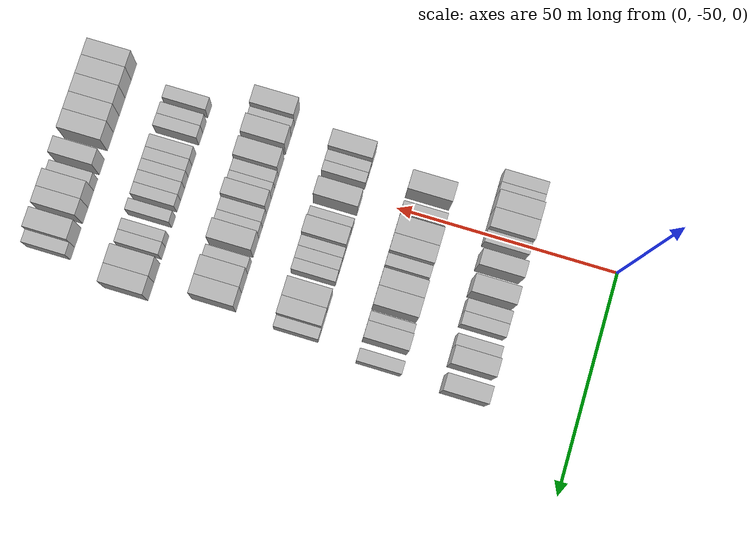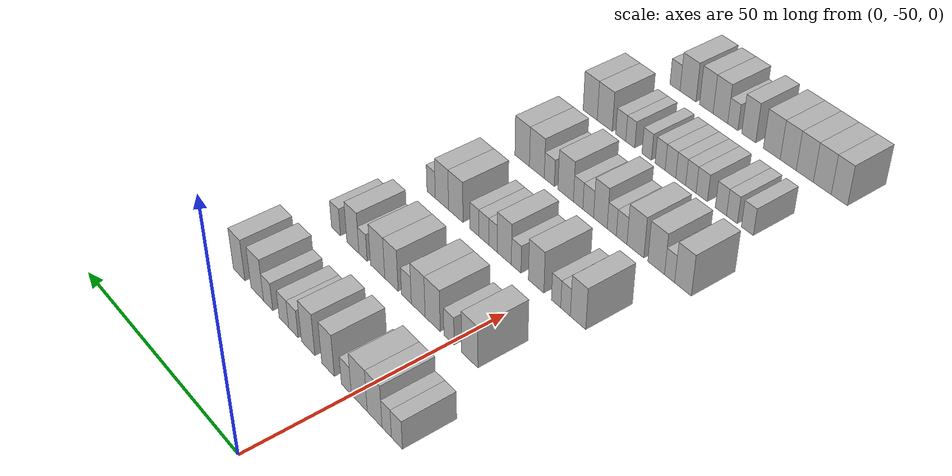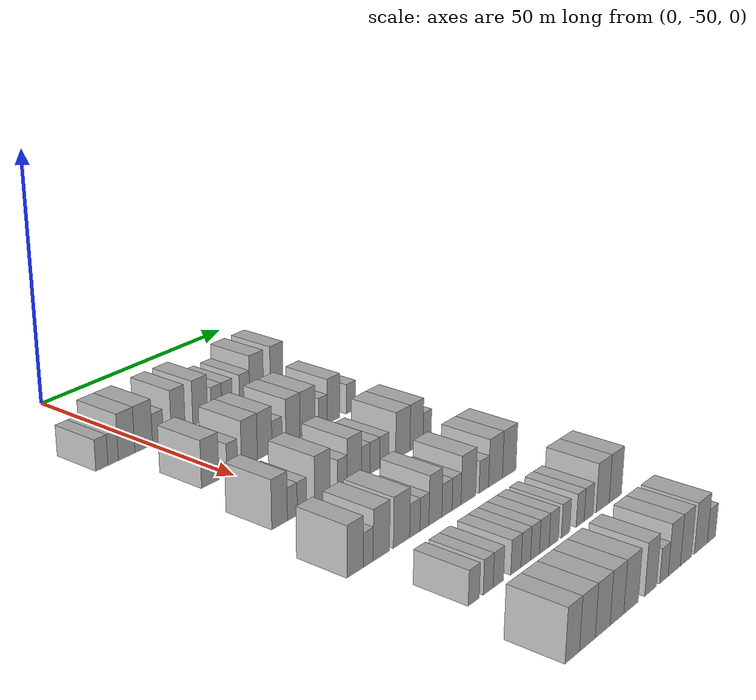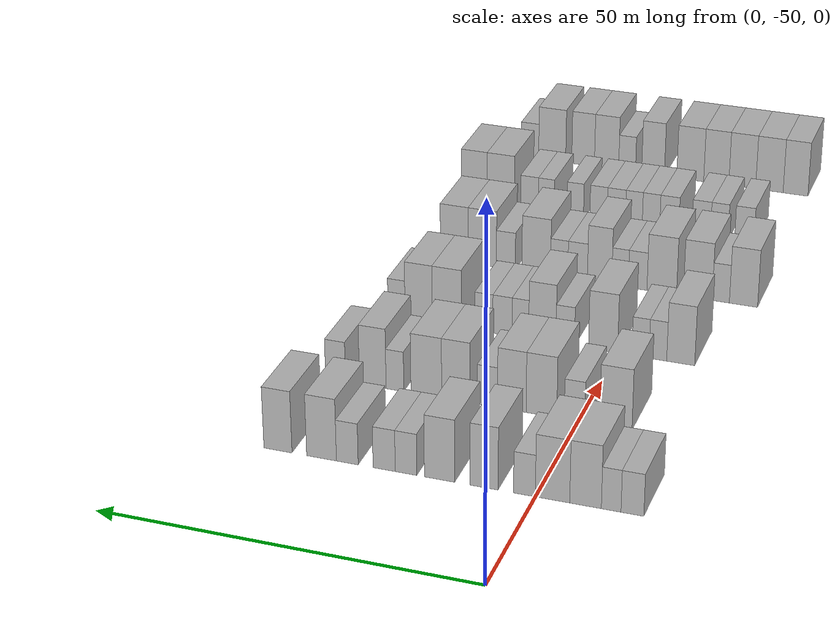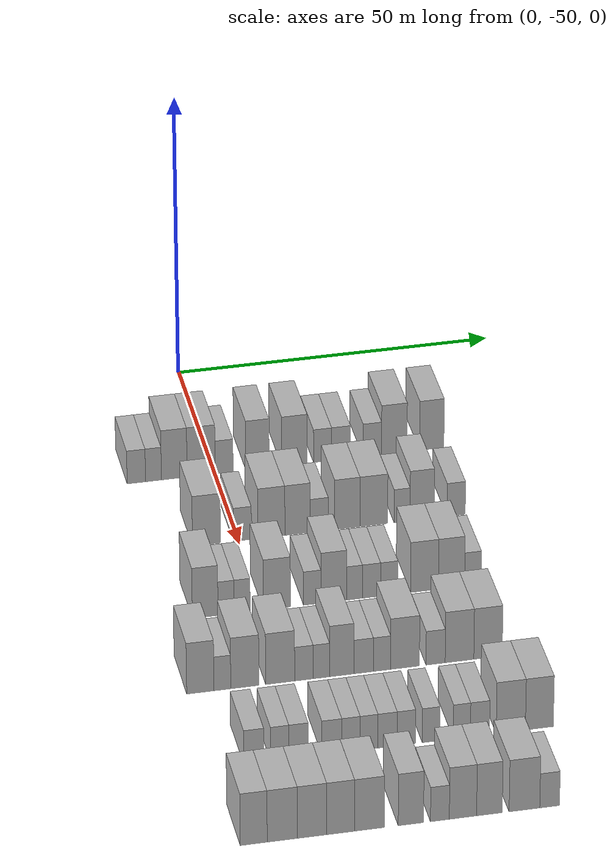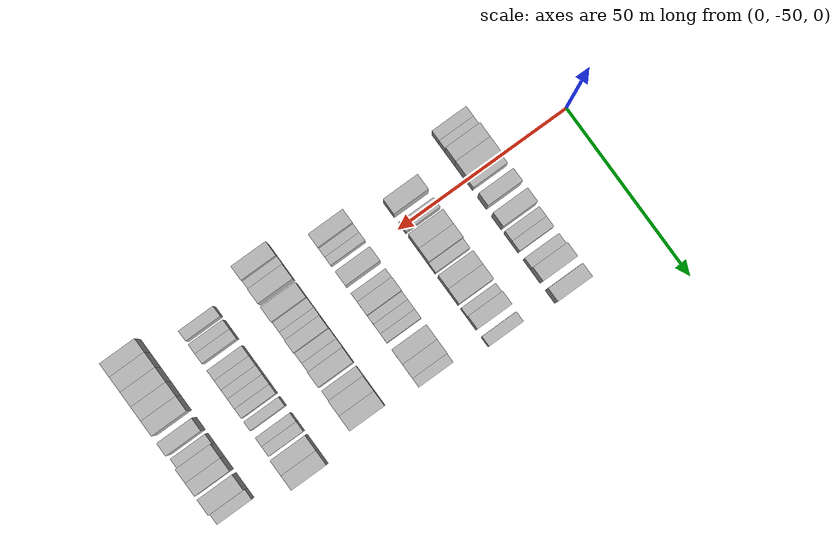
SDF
<sdf version="1.6">
 <world name="default">
  <model name="building_72">
   <static>1</static>
   <pose>25.0000 -62.3027 0 0.000000 0.000000 0.000000</pose>
   <link name="link">
    <pose>0 0 3.00 0 0 0</pose>
    <collision name="collision"><geometry><box><size>10.0000 2.8853 6.0000</size></box></geometry></collision>
    <visual name="visual">
     <cast_shadows>0</cast_shadows>
     <geometry><box><size>10.0000 2.8853 6.0000</size></box></geometry>
     <material>
      <script>
       <uri>model://HANNAS_wall/materials/scripts</uri>
       <uri>model://HANNAS_wall/materials/textures</uri>
       <name>vrc/HANNAS_wall</name>
      </script>
     </material>
    </visual>
   </link>
  </model>
  <model name="building_73">
   <static>1</static>
   <pose>25.0000 -59.6160 0 0.000000 0.000000 0.000000</pose>
   <link name="link">
    <pose>0 0 3.00 0 0 0</pose>
    <collision name="collision"><geometry><box><size>10.0000 2.4881 6.0000</size></box></geometry></collision>
    <visual name="visual">
     <cast_shadows>0</cast_shadows>
     <geometry><box><size>10.0000 2.4881 6.0000</size></box></geometry>
     <material>
      <script>
       <uri>model://HANNAS_wall/materials/scripts</uri>
       <uri>model://HANNAS_wall/materials/textures</uri>
       <name>vrc/HANNAS_wall</name>
      </script>
     </material>
    </visual>
   </link>
  </model>
  <model name="building_74">
   <static>1</static>
   <pose>25.0000 -56.3568 0 0.000000 0.000000 0.000000</pose>
   <link name="link">
    <pose>0 0 4.50 0 0 0</pose>
    <collision name="collision"><geometry><box><size>10.0000 4.0303 9.0000</size></box></geometry></collision>
    <visual name="visual">
     <cast_shadows>0</cast_shadows>
     <geometry><box><size>10.0000 4.0303 9.0000</size></box></geometry>
     <material>
      <script>
       <uri>model://HANNAS_wall/materials/scripts</uri>
       <uri>model://HANNAS_wall/materials/textures</uri>
       <name>vrc/HANNAS_wall</name>
      </script>
     </material>
    </visual>
   </link>
  </model>
  <model name="building_75">
   <static>1</static>
   <pose>25.0000 -52.1348 0 0.000000 0.000000 0.000000</pose>
   <link name="link">
    <pose>0 0 4.50 0 0 0</pose>
    <collision name="collision"><geometry><box><size>10.0000 4.4137 9.0000</size></box></geometry></collision>
    <visual name="visual">
     <cast_shadows>0</cast_shadows>
     <geometry><box><size>10.0000 4.4137 9.0000</size></box></geometry>
     <material>
      <script>
       <uri>model://HANNAS_wall/materials/scripts</uri>
       <uri>model://HANNAS_wall/materials/textures</uri>
       <name>vrc/HANNAS_wall</name>
      </script>
     </material>
    </visual>
   </link>
  </model>
  <model name="building_76">
   <static>1</static>
   <pose>25.0000 -48.5187 0 0.000000 0.000000 0.000000</pose>
   <link name="link">
    <pose>0 0 3.00 0 0 0</pose>
    <collision name="collision"><geometry><box><size>10.0000 2.8185 6.0000</size></box></geometry></collision>
    <visual name="visual">
     <cast_shadows>0</cast_shadows>
     <geometry><box><size>10.0000 2.8185 6.0000</size></box></geometry>
     <material>
      <script>
       <uri>model://HANNAS_wall/materials/scripts</uri>
       <uri>model://HANNAS_wall/materials/textures</uri>
       <name>vrc/HANNAS_wall</name>
      </script>
     </material>
    </visual>
   </link>
  </model>
  <model name="building_77">
   <static>1</static>
   <pose>25.0000 -43.2736 0 0.000000 0.000000 0.000000</pose>
   <link name="link">
    <pose>0 0 4.50 0 0 0</pose>
    <collision name="collision"><geometry><box><size>10.0000 3.6717 9.0000</size></box></geometry></collision>
    <visual name="visual">
     <cast_shadows>0</cast_shadows>
     <geometry><box><size>10.0000 3.6717 9.0000</size></box></geometry>
     <material>
      <script>
       <uri>model://HANNAS_wall/materials/scripts</uri>
       <uri>model://HANNAS_wall/materials/textures</uri>
       <name>vrc/HANNAS_wall</name>
      </script>
     </material>
    </visual>
   </link>
  </model>
  <model name="building_78">
   <static>1</static>
   <pose>25.0000 -37.4311 0 0.000000 0.000000 0.000000</pose>
   <link name="link">
    <pose>0 0 4.50 0 0 0</pose>
    <collision name="collision"><geometry><box><size>10.0000 4.0133 9.0000</size></box></geometry></collision>
    <visual name="visual">
     <cast_shadows>0</cast_shadows>
     <geometry><box><size>10.0000 4.0133 9.0000</size></box></geometry>
     <material>
      <script>
       <uri>model://HANNAS_wall/materials/scripts</uri>
       <uri>model://HANNAS_wall/materials/textures</uri>
       <name>vrc/HANNAS_wall</name>
      </script>
     </material>
    </visual>
   </link>
  </model>
  <model name="building_79">
   <static>1</static>
   <pose>25.0000 -32.9863 0 0.000000 0.000000 0.000000</pose>
   <link name="link">
    <pose>0 0 3.00 0 0 0</pose>
    <collision name="collision"><geometry><box><size>10.0000 2.8762 6.0000</size></box></geometry></collision>
    <visual name="visual">
     <cast_shadows>0</cast_shadows>
     <geometry><box><size>10.0000 2.8762 6.0000</size></box></geometry>
     <material>
      <script>
       <uri>model://HANNAS_wall/materials/scripts</uri>
       <uri>model://HANNAS_wall/materials/textures</uri>
       <name>vrc/HANNAS_wall</name>
      </script>
     </material>
    </visual>
   </link>
  </model>
  <model name="building_80">
   <static>1</static>
   <pose>25.0000 -30.0642 0 0.000000 0.000000 0.000000</pose>
   <link name="link">
    <pose>0 0 3.00 0 0 0</pose>
    <collision name="collision"><geometry><box><size>10.0000 2.9680 6.0000</size></box></geometry></collision>
    <visual name="visual">
     <cast_shadows>0</cast_shadows>
     <geometry><box><size>10.0000 2.9680 6.0000</size></box></geometry>
     <material>
      <script>
       <uri>model://HANNAS_wall/materials/scripts</uri>
       <uri>model://HANNAS_wall/materials/textures</uri>
       <name>vrc/HANNAS_wall</name>
      </script>
     </material>
    </visual>
   </link>
  </model>
  <model name="building_81">
   <static>1</static>
   <pose>25.0000 -25.1114 0 0.000000 0.000000 0.000000</pose>
   <link name="link">
    <pose>0 0 3.00 0 0 0</pose>
    <collision name="collision"><geometry><box><size>10.0000 2.9376 6.0000</size></box></geometry></collision>
    <visual name="visual">
     <cast_shadows>0</cast_shadows>
     <geometry><box><size>10.0000 2.9376 6.0000</size></box></geometry>
     <material>
      <script>
       <uri>model://HANNAS_wall/materials/scripts</uri>
       <uri>model://HANNAS_wall/materials/textures</uri>
       <name>vrc/HANNAS_wall</name>
      </script>
     </material>
    </visual>
   </link>
  </model>
  <model name="building_82">
   <static>1</static>
   <pose>25.0000 -21.6182 0 0.000000 0.000000 0.000000</pose>
   <link name="link">
    <pose>0 0 4.50 0 0 0</pose>
    <collision name="collision"><geometry><box><size>10.0000 4.0489 9.0000</size></box></geometry></collision>
    <visual name="visual">
     <cast_shadows>0</cast_shadows>
     <geometry><box><size>10.0000 4.0489 9.0000</size></box></geometry>
     <material>
      <script>
       <uri>model://HANNAS_wall/materials/scripts</uri>
       <uri>model://HANNAS_wall/materials/textures</uri>
       <name>vrc/HANNAS_wall</name>
      </script>
     </material>
    </visual>
   </link>
  </model>
  <model name="building_83">
   <static>1</static>
   <pose>25.0000 -15.6659 0 0.000000 0.000000 0.000000</pose>
   <link name="link">
    <pose>0 0 4.50 0 0 0</pose>
    <collision name="collision"><geometry><box><size>10.0000 3.8557 9.0000</size></box></geometry></collision>
    <visual name="visual">
     <cast_shadows>0</cast_shadows>
     <geometry><box><size>10.0000 3.8557 9.0000</size></box></geometry>
     <material>
      <script>
       <uri>model://HANNAS_wall/materials/scripts</uri>
       <uri>model://HANNAS_wall/materials/textures</uri>
       <name>vrc/HANNAS_wall</name>
      </script>
     </material>
    </visual>
   </link>
  </model>
  <model name="building_234">
   <static>1</static>
   <pose>44.0000 -54.9548 0 0.000000 0.000000 0.000000</pose>
   <link name="link">
    <pose>0 0 4.50 0 0 0</pose>
    <collision name="collision"><geometry><box><size>10.0000 4.3341 9.0000</size></box></geometry></collision>
    <visual name="visual">
     <cast_shadows>0</cast_shadows>
     <geometry><box><size>10.0000 4.3341 9.0000</size></box></geometry>
     <material>
      <script>
       <uri>model://HANNAS_wall/materials/scripts</uri>
       <uri>model://HANNAS_wall/materials/textures</uri>
       <name>vrc/HANNAS_wall</name>
      </script>
     </material>
    </visual>
   </link>
  </model>
  <model name="building_235">
   <static>1</static>
   <pose>44.0000 -49.3943 0 0.000000 0.000000 0.000000</pose>
   <link name="link">
    <pose>0 0 3.00 0 0 0</pose>
    <collision name="collision"><geometry><box><size>10.0000 2.7870 6.0000</size></box></geometry></collision>
    <visual name="visual">
     <cast_shadows>0</cast_shadows>
     <geometry><box><size>10.0000 2.7870 6.0000</size></box></geometry>
     <material>
      <script>
       <uri>model://HANNAS_wall/materials/scripts</uri>
       <uri>model://HANNAS_wall/materials/textures</uri>
       <name>vrc/HANNAS_wall</name>
      </script>
     </material>
    </visual>
   </link>
  </model>
  <model name="building_236">
   <static>1</static>
   <pose>44.0000 -44.9061 0 0.000000 0.000000 0.000000</pose>
   <link name="link">
    <pose>0 0 4.50 0 0 0</pose>
    <collision name="collision"><geometry><box><size>10.0000 4.1894 9.0000</size></box></geometry></collision>
    <visual name="visual">
     <cast_shadows>0</cast_shadows>
     <geometry><box><size>10.0000 4.1894 9.0000</size></box></geometry>
     <material>
      <script>
       <uri>model://HANNAS_wall/materials/scripts</uri>
       <uri>model://HANNAS_wall/materials/textures</uri>
       <name>vrc/HANNAS_wall</name>
      </script>
     </material>
    </visual>
   </link>
  </model>
  <model name="building_237">
   <static>1</static>
   <pose>44.0000 -40.8512 0 0.000000 0.000000 0.000000</pose>
   <link name="link">
    <pose>0 0 4.50 0 0 0</pose>
    <collision name="collision"><geometry><box><size>10.0000 3.9205 9.0000</size></box></geometry></collision>
    <visual name="visual">
     <cast_shadows>0</cast_shadows>
     <geometry><box><size>10.0000 3.9205 9.0000</size></box></geometry>
     <material>
      <script>
       <uri>model://HANNAS_wall/materials/scripts</uri>
       <uri>model://HANNAS_wall/materials/textures</uri>
       <name>vrc/HANNAS_wall</name>
      </script>
     </material>
    </visual>
   </link>
  </model>
  <model name="building_238">
   <static>1</static>
   <pose>44.0000 -37.4845 0 0.000000 0.000000 0.000000</pose>
   <link name="link">
    <pose>0 0 3.00 0 0 0</pose>
    <collision name="collision"><geometry><box><size>10.0000 2.8129 6.0000</size></box></geometry></collision>
    <visual name="visual">
     <cast_shadows>0</cast_shadows>
     <geometry><box><size>10.0000 2.8129 6.0000</size></box></geometry>
     <material>
      <script>
       <uri>model://HANNAS_wall/materials/scripts</uri>
       <uri>model://HANNAS_wall/materials/textures</uri>
       <name>vrc/HANNAS_wall</name>
      </script>
     </material>
    </visual>
   </link>
  </model>
  <model name="building_239">
   <static>1</static>
   <pose>44.0000 -33.1069 0 0.000000 0.000000 0.000000</pose>
   <link name="link">
    <pose>0 0 4.50 0 0 0</pose>
    <collision name="collision"><geometry><box><size>10.0000 3.9422 9.0000</size></box></geometry></collision>
    <visual name="visual">
     <cast_shadows>0</cast_shadows>
     <geometry><box><size>10.0000 3.9422 9.0000</size></box></geometry>
     <material>
      <script>
       <uri>model://HANNAS_wall/materials/scripts</uri>
       <uri>model://HANNAS_wall/materials/textures</uri>
       <name>vrc/HANNAS_wall</name>
      </script>
     </material>
    </visual>
   </link>
  </model>
  <model name="building_240">
   <static>1</static>
   <pose>44.0000 -28.9810 0 0.000000 0.000000 0.000000</pose>
   <link name="link">
    <pose>0 0 4.50 0 0 0</pose>
    <collision name="collision"><geometry><box><size>10.0000 4.3098 9.0000</size></box></geometry></collision>
    <visual name="visual">
     <cast_shadows>0</cast_shadows>
     <geometry><box><size>10.0000 4.3098 9.0000</size></box></geometry>
     <material>
      <script>
       <uri>model://HANNAS_wall/materials/scripts</uri>
       <uri>model://HANNAS_wall/materials/textures</uri>
       <name>vrc/HANNAS_wall</name>
      </script>
     </material>
    </visual>
   </link>
  </model>
  <model name="building_241">
   <static>1</static>
   <pose>44.0000 -24.5726 0 0.000000 0.000000 0.000000</pose>
   <link name="link">
    <pose>0 0 3.00 0 0 0</pose>
    <collision name="collision"><geometry><box><size>10.0000 2.5069 6.0000</size></box></geometry></collision>
    <visual name="visual">
     <cast_shadows>0</cast_shadows>
     <geometry><box><size>10.0000 2.5069 6.0000</size></box></geometry>
     <material>
      <script>
       <uri>model://HANNAS_wall/materials/scripts</uri>
       <uri>model://HANNAS_wall/materials/textures</uri>
       <name>vrc/HANNAS_wall</name>
      </script>
     </material>
    </visual>
   </link>
  </model>
  <model name="building_242">
   <static>1</static>
   <pose>44.0000 -21.4310 0 0.000000 0.000000 0.000000</pose>
   <link name="link">
    <pose>0 0 4.50 0 0 0</pose>
    <collision name="collision"><geometry><box><size>10.0000 3.7763 9.0000</size></box></geometry></collision>
    <visual name="visual">
     <cast_shadows>0</cast_shadows>
     <geometry><box><size>10.0000 3.7763 9.0000</size></box></geometry>
     <material>
      <script>
       <uri>model://HANNAS_wall/materials/scripts</uri>
       <uri>model://HANNAS_wall/materials/textures</uri>
       <name>vrc/HANNAS_wall</name>
      </script>
     </material>
    </visual>
   </link>
  </model>
  <model name="building_243">
   <static>1</static>
   <pose>44.0000 -16.1158 0 0.000000 0.000000 0.000000</pose>
   <link name="link">
    <pose>0 0 3.00 0 0 0</pose>
    <collision name="collision"><geometry><box><size>10.0000 2.8542 6.0000</size></box></geometry></collision>
    <visual name="visual">
     <cast_shadows>0</cast_shadows>
     <geometry><box><size>10.0000 2.8542 6.0000</size></box></geometry>
     <material>
      <script>
       <uri>model://HANNAS_wall/materials/scripts</uri>
       <uri>model://HANNAS_wall/materials/textures</uri>
       <name>vrc/HANNAS_wall</name>
      </script>
     </material>
    </visual>
   </link>
  </model>
  <model name="building_414">
   <static>1</static>
   <pose>63.0000 -58.8139 0 0.000000 0.000000 0.000000</pose>
   <link name="link">
    <pose>0 0 4.50 0 0 0</pose>
    <collision name="collision"><geometry><box><size>10.0000 3.9018 9.0000</size></box></geometry></collision>
    <visual name="visual">
     <cast_shadows>0</cast_shadows>
     <geometry><box><size>10.0000 3.9018 9.0000</size></box></geometry>
     <material>
      <script>
       <uri>model://HANNAS_wall/materials/scripts</uri>
       <uri>model://HANNAS_wall/materials/textures</uri>
       <name>vrc/HANNAS_wall</name>
      </script>
     </material>
    </visual>
   </link>
  </model>
  <model name="building_415">
   <static>1</static>
   <pose>63.0000 -55.6257 0 0.000000 0.000000 0.000000</pose>
   <link name="link">
    <pose>0 0 3.00 0 0 0</pose>
    <collision name="collision"><geometry><box><size>10.0000 2.4747 6.0000</size></box></geometry></collision>
    <visual name="visual">
     <cast_shadows>0</cast_shadows>
     <geometry><box><size>10.0000 2.4747 6.0000</size></box></geometry>
     <material>
      <script>
       <uri>model://HANNAS_wall/materials/scripts</uri>
       <uri>model://HANNAS_wall/materials/textures</uri>
       <name>vrc/HANNAS_wall</name>
      </script>
     </material>
    </visual>
   </link>
  </model>
  <model name="building_416">
   <static>1</static>
   <pose>63.0000 -53.1813 0 0.000000 0.000000 0.000000</pose>
   <link name="link">
    <pose>0 0 3.00 0 0 0</pose>
    <collision name="collision"><geometry><box><size>10.0000 2.4141 6.0000</size></box></geometry></collision>
    <visual name="visual">
     <cast_shadows>0</cast_shadows>
     <geometry><box><size>10.0000 2.4141 6.0000</size></box></geometry>
     <material>
      <script>
       <uri>model://HANNAS_wall/materials/scripts</uri>
       <uri>model://HANNAS_wall/materials/textures</uri>
       <name>vrc/HANNAS_wall</name>
      </script>
     </material>
    </visual>
   </link>
  </model>
  <model name="building_417">
   <static>1</static>
   <pose>63.0000 -47.9079 0 0.000000 0.000000 0.000000</pose>
   <link name="link">
    <pose>0 0 4.50 0 0 0</pose>
    <collision name="collision"><geometry><box><size>10.0000 4.1326 9.0000</size></box></geometry></collision>
    <visual name="visual">
     <cast_shadows>0</cast_shadows>
     <geometry><box><size>10.0000 4.1326 9.0000</size></box></geometry>
     <material>
      <script>
       <uri>model://HANNAS_wall/materials/scripts</uri>
       <uri>model://HANNAS_wall/materials/textures</uri>
       <name>vrc/HANNAS_wall</name>
      </script>
     </material>
    </visual>
   </link>
  </model>
  <model name="building_418">
   <static>1</static>
   <pose>63.0000 -42.5166 0 0.000000 0.000000 0.000000</pose>
   <link name="link">
    <pose>0 0 3.00 0 0 0</pose>
    <collision name="collision"><geometry><box><size>10.0000 2.6501 6.0000</size></box></geometry></collision>
    <visual name="visual">
     <cast_shadows>0</cast_shadows>
     <geometry><box><size>10.0000 2.6501 6.0000</size></box></geometry>
     <material>
      <script>
       <uri>model://HANNAS_wall/materials/scripts</uri>
       <uri>model://HANNAS_wall/materials/textures</uri>
       <name>vrc/HANNAS_wall</name>
      </script>
     </material>
    </visual>
   </link>
  </model>
  <model name="building_419">
   <static>1</static>
   <pose>63.0000 -39.2282 0 0.000000 0.000000 0.000000</pose>
   <link name="link">
    <pose>0 0 4.50 0 0 0</pose>
    <collision name="collision"><geometry><box><size>10.0000 3.9266 9.0000</size></box></geometry></collision>
    <visual name="visual">
     <cast_shadows>0</cast_shadows>
     <geometry><box><size>10.0000 3.9266 9.0000</size></box></geometry>
     <material>
      <script>
       <uri>model://HANNAS_wall/materials/scripts</uri>
       <uri>model://HANNAS_wall/materials/textures</uri>
       <name>vrc/HANNAS_wall</name>
      </script>
     </material>
    </visual>
   </link>
  </model>
  <model name="building_420">
   <static>1</static>
   <pose>63.0000 -36.0581 0 0.000000 0.000000 0.000000</pose>
   <link name="link">
    <pose>0 0 3.00 0 0 0</pose>
    <collision name="collision"><geometry><box><size>10.0000 2.4136 6.0000</size></box></geometry></collision>
    <visual name="visual">
     <cast_shadows>0</cast_shadows>
     <geometry><box><size>10.0000 2.4136 6.0000</size></box></geometry>
     <material>
      <script>
       <uri>model://HANNAS_wall/materials/scripts</uri>
       <uri>model://HANNAS_wall/materials/textures</uri>
       <name>vrc/HANNAS_wall</name>
      </script>
     </material>
    </visual>
   </link>
  </model>
  <model name="building_421">
   <static>1</static>
   <pose>63.0000 -33.4547 0 0.000000 0.000000 0.000000</pose>
   <link name="link">
    <pose>0 0 3.00 0 0 0</pose>
    <collision name="collision"><geometry><box><size>10.0000 2.7931 6.0000</size></box></geometry></collision>
    <visual name="visual">
     <cast_shadows>0</cast_shadows>
     <geometry><box><size>10.0000 2.7931 6.0000</size></box></geometry>
     <material>
      <script>
       <uri>model://HANNAS_wall/materials/scripts</uri>
       <uri>model://HANNAS_wall/materials/textures</uri>
       <name>vrc/HANNAS_wall</name>
      </script>
     </material>
    </visual>
   </link>
  </model>
  <model name="building_422">
   <static>1</static>
   <pose>63.0000 -30.7506 0 0.000000 0.000000 0.000000</pose>
   <link name="link">
    <pose>0 0 3.00 0 0 0</pose>
    <collision name="collision"><geometry><box><size>10.0000 2.6151 6.0000</size></box></geometry></collision>
    <visual name="visual">
     <cast_shadows>0</cast_shadows>
     <geometry><box><size>10.0000 2.6151 6.0000</size></box></geometry>
     <material>
      <script>
       <uri>model://HANNAS_wall/materials/scripts</uri>
       <uri>model://HANNAS_wall/materials/textures</uri>
       <name>vrc/HANNAS_wall</name>
      </script>
     </material>
    </visual>
   </link>
  </model>
  <model name="building_423">
   <static>1</static>
   <pose>63.0000 -25.3016 0 0.000000 0.000000 0.000000</pose>
   <link name="link">
    <pose>0 0 4.50 0 0 0</pose>
    <collision name="collision"><geometry><box><size>10.0000 4.2830 9.0000</size></box></geometry></collision>
    <visual name="visual">
     <cast_shadows>0</cast_shadows>
     <geometry><box><size>10.0000 4.2830 9.0000</size></box></geometry>
     <material>
      <script>
       <uri>model://HANNAS_wall/materials/scripts</uri>
       <uri>model://HANNAS_wall/materials/textures</uri>
       <name>vrc/HANNAS_wall</name>
      </script>
     </material>
    </visual>
   </link>
  </model>
  <model name="building_424">
   <static>1</static>
   <pose>63.0000 -21.1543 0 0.000000 0.000000 0.000000</pose>
   <link name="link">
    <pose>0 0 4.50 0 0 0</pose>
    <collision name="collision"><geometry><box><size>10.0000 4.0118 9.0000</size></box></geometry></collision>
    <visual name="visual">
     <cast_shadows>0</cast_shadows>
     <geometry><box><size>10.0000 4.0118 9.0000</size></box></geometry>
     <material>
      <script>
       <uri>model://HANNAS_wall/materials/scripts</uri>
       <uri>model://HANNAS_wall/materials/textures</uri>
       <name>vrc/HANNAS_wall</name>
      </script>
     </material>
    </visual>
   </link>
  </model>
  <model name="building_425">
   <static>1</static>
   <pose>63.0000 -17.8754 0 0.000000 0.000000 0.000000</pose>
   <link name="link">
    <pose>0 0 3.00 0 0 0</pose>
    <collision name="collision"><geometry><box><size>10.0000 2.5458 6.0000</size></box></geometry></collision>
    <visual name="visual">
     <cast_shadows>0</cast_shadows>
     <geometry><box><size>10.0000 2.5458 6.0000</size></box></geometry>
     <material>
      <script>
       <uri>model://HANNAS_wall/materials/scripts</uri>
       <uri>model://HANNAS_wall/materials/textures</uri>
       <name>vrc/HANNAS_wall</name>
      </script>
     </material>
    </visual>
   </link>
  </model>
  <model name="building_592">
   <static>1</static>
   <pose>82.0000 -63.1893 0 0.000000 0.000000 0.000000</pose>
   <link name="link">
    <pose>0 0 4.50 0 0 0</pose>
    <collision name="collision"><geometry><box><size>10.0000 4.0735 9.0000</size></box></geometry></collision>
    <visual name="visual">
     <cast_shadows>0</cast_shadows>
     <geometry><box><size>10.0000 4.0735 9.0000</size></box></geometry>
     <material>
      <script>
       <uri>model://HANNAS_wall/materials/scripts</uri>
       <uri>model://HANNAS_wall/materials/textures</uri>
       <name>vrc/HANNAS_wall</name>
      </script>
     </material>
    </visual>
   </link>
  </model>
  <model name="building_593">
   <static>1</static>
   <pose>82.0000 -59.9024 0 0.000000 0.000000 0.000000</pose>
   <link name="link">
    <pose>0 0 3.00 0 0 0</pose>
    <collision name="collision"><geometry><box><size>10.0000 2.5005 6.0000</size></box></geometry></collision>
    <visual name="visual">
     <cast_shadows>0</cast_shadows>
     <geometry><box><size>10.0000 2.5005 6.0000</size></box></geometry>
     <material>
      <script>
       <uri>model://HANNAS_wall/materials/scripts</uri>
       <uri>model://HANNAS_wall/materials/textures</uri>
       <name>vrc/HANNAS_wall</name>
      </script>
     </material>
    </visual>
   </link>
  </model>
  <model name="building_594">
   <static>1</static>
   <pose>82.0000 -56.5470 0 0.000000 0.000000 0.000000</pose>
   <link name="link">
    <pose>0 0 4.50 0 0 0</pose>
    <collision name="collision"><geometry><box><size>10.0000 4.2101 9.0000</size></box></geometry></collision>
    <visual name="visual">
     <cast_shadows>0</cast_shadows>
     <geometry><box><size>10.0000 4.2101 9.0000</size></box></geometry>
     <material>
      <script>
       <uri>model://HANNAS_wall/materials/scripts</uri>
       <uri>model://HANNAS_wall/materials/textures</uri>
       <name>vrc/HANNAS_wall</name>
      </script>
     </material>
    </visual>
   </link>
  </model>
  <model name="building_595">
   <static>1</static>
   <pose>82.0000 -51.2664 0 0.000000 0.000000 0.000000</pose>
   <link name="link">
    <pose>0 0 4.50 0 0 0</pose>
    <collision name="collision"><geometry><box><size>10.0000 4.3512 9.0000</size></box></geometry></collision>
    <visual name="visual">
     <cast_shadows>0</cast_shadows>
     <geometry><box><size>10.0000 4.3512 9.0000</size></box></geometry>
     <material>
      <script>
       <uri>model://HANNAS_wall/materials/scripts</uri>
       <uri>model://HANNAS_wall/materials/textures</uri>
       <name>vrc/HANNAS_wall</name>
      </script>
     </material>
    </visual>
   </link>
  </model>
  <model name="building_596">
   <static>1</static>
   <pose>82.0000 -47.7027 0 0.000000 0.000000 0.000000</pose>
   <link name="link">
    <pose>0 0 3.00 0 0 0</pose>
    <collision name="collision"><geometry><box><size>10.0000 2.7763 6.0000</size></box></geometry></collision>
    <visual name="visual">
     <cast_shadows>0</cast_shadows>
     <geometry><box><size>10.0000 2.7763 6.0000</size></box></geometry>
     <material>
      <script>
       <uri>model://HANNAS_wall/materials/scripts</uri>
       <uri>model://HANNAS_wall/materials/textures</uri>
       <name>vrc/HANNAS_wall</name>
      </script>
     </material>
    </visual>
   </link>
  </model>
  <model name="building_597">
   <static>1</static>
   <pose>82.0000 -45.0844 0 0.000000 0.000000 0.000000</pose>
   <link name="link">
    <pose>0 0 3.00 0 0 0</pose>
    <collision name="collision"><geometry><box><size>10.0000 2.4602 6.0000</size></box></geometry></collision>
    <visual name="visual">
     <cast_shadows>0</cast_shadows>
     <geometry><box><size>10.0000 2.4602 6.0000</size></box></geometry>
     <material>
      <script>
       <uri>model://HANNAS_wall/materials/scripts</uri>
       <uri>model://HANNAS_wall/materials/textures</uri>
       <name>vrc/HANNAS_wall</name>
      </script>
     </material>
    </visual>
   </link>
  </model>
  <model name="building_598">
   <static>1</static>
   <pose>82.0000 -42.0354 0 0.000000 0.000000 0.000000</pose>
   <link name="link">
    <pose>0 0 4.50 0 0 0</pose>
    <collision name="collision"><geometry><box><size>10.0000 3.6379 9.0000</size></box></geometry></collision>
    <visual name="visual">
     <cast_shadows>0</cast_shadows>
     <geometry><box><size>10.0000 3.6379 9.0000</size></box></geometry>
     <material>
      <script>
       <uri>model://HANNAS_wall/materials/scripts</uri>
       <uri>model://HANNAS_wall/materials/textures</uri>
       <name>vrc/HANNAS_wall</name>
      </script>
     </material>
    </visual>
   </link>
  </model>
  <model name="building_599">
   <static>1</static>
   <pose>82.0000 -38.7484 0 0.000000 0.000000 0.000000</pose>
   <link name="link">
    <pose>0 0 3.00 0 0 0</pose>
    <collision name="collision"><geometry><box><size>10.0000 2.9360 6.0000</size></box></geometry></collision>
    <visual name="visual">
     <cast_shadows>0</cast_shadows>
     <geometry><box><size>10.0000 2.9360 6.0000</size></box></geometry>
     <material>
      <script>
       <uri>model://HANNAS_wall/materials/scripts</uri>
       <uri>model://HANNAS_wall/materials/textures</uri>
       <name>vrc/HANNAS_wall</name>
      </script>
     </material>
    </visual>
   </link>
  </model>
  <model name="building_600">
   <static>1</static>
   <pose>82.0000 -35.9781 0 0.000000 0.000000 0.000000</pose>
   <link name="link">
    <pose>0 0 3.00 0 0 0</pose>
    <collision name="collision"><geometry><box><size>10.0000 2.6046 6.0000</size></box></geometry></collision>
    <visual name="visual">
     <cast_shadows>0</cast_shadows>
     <geometry><box><size>10.0000 2.6046 6.0000</size></box></geometry>
     <material>
      <script>
       <uri>model://HANNAS_wall/materials/scripts</uri>
       <uri>model://HANNAS_wall/materials/textures</uri>
       <name>vrc/HANNAS_wall</name>
      </script>
     </material>
    </visual>
   </link>
  </model>
  <model name="building_601">
   <static>1</static>
   <pose>82.0000 -32.5041 0 0.000000 0.000000 0.000000</pose>
   <link name="link">
    <pose>0 0 4.50 0 0 0</pose>
    <collision name="collision"><geometry><box><size>10.0000 4.3434 9.0000</size></box></geometry></collision>
    <visual name="visual">
     <cast_shadows>0</cast_shadows>
     <geometry><box><size>10.0000 4.3434 9.0000</size></box></geometry>
     <material>
      <script>
       <uri>model://HANNAS_wall/materials/scripts</uri>
       <uri>model://HANNAS_wall/materials/textures</uri>
       <name>vrc/HANNAS_wall</name>
      </script>
     </material>
    </visual>
   </link>
  </model>
  <model name="building_602">
   <static>1</static>
   <pose>82.0000 -27.8852 0 0.000000 0.000000 0.000000</pose>
   <link name="link">
    <pose>0 0 3.00 0 0 0</pose>
    <collision name="collision"><geometry><box><size>10.0000 2.8943 6.0000</size></box></geometry></collision>
    <visual name="visual">
     <cast_shadows>0</cast_shadows>
     <geometry><box><size>10.0000 2.8943 6.0000</size></box></geometry>
     <material>
      <script>
       <uri>model://HANNAS_wall/materials/scripts</uri>
       <uri>model://HANNAS_wall/materials/textures</uri>
       <name>vrc/HANNAS_wall</name>
      </script>
     </material>
    </visual>
   </link>
  </model>
  <model name="building_603">
   <static>1</static>
   <pose>82.0000 -24.2713 0 0.000000 0.000000 0.000000</pose>
   <link name="link">
    <pose>0 0 4.50 0 0 0</pose>
    <collision name="collision"><geometry><box><size>10.0000 4.3334 9.0000</size></box></geometry></collision>
    <visual name="visual">
     <cast_shadows>0</cast_shadows>
     <geometry><box><size>10.0000 4.3334 9.0000</size></box></geometry>
     <material>
      <script>
       <uri>model://HANNAS_wall/materials/scripts</uri>
       <uri>model://HANNAS_wall/materials/textures</uri>
       <name>vrc/HANNAS_wall</name>
      </script>
     </material>
    </visual>
   </link>
  </model>
  <model name="building_604">
   <static>1</static>
   <pose>82.0000 -19.9559 0 0.000000 0.000000 0.000000</pose>
   <link name="link">
    <pose>0 0 4.50 0 0 0</pose>
    <collision name="collision"><geometry><box><size>10.0000 4.2974 9.0000</size></box></geometry></collision>
    <visual name="visual">
     <cast_shadows>0</cast_shadows>
     <geometry><box><size>10.0000 4.2974 9.0000</size></box></geometry>
     <material>
      <script>
       <uri>model://HANNAS_wall/materials/scripts</uri>
       <uri>model://HANNAS_wall/materials/textures</uri>
       <name>vrc/HANNAS_wall</name>
      </script>
     </material>
    </visual>
   </link>
  </model>
  <model name="building_766">
   <static>1</static>
   <pose>101.0000 -58.9952 0 0.000000 0.000000 0.000000</pose>
   <link name="link">
    <pose>0 0 3.00 0 0 0</pose>
    <collision name="collision"><geometry><box><size>10.0000 2.9431 6.0000</size></box></geometry></collision>
    <visual name="visual">
     <cast_shadows>0</cast_shadows>
     <geometry><box><size>10.0000 2.9431 6.0000</size></box></geometry>
     <material>
      <script>
       <uri>model://HANNAS_wall/materials/scripts</uri>
       <uri>model://HANNAS_wall/materials/textures</uri>
       <name>vrc/HANNAS_wall</name>
      </script>
     </material>
    </visual>
   </link>
  </model>
  <model name="building_767">
   <static>1</static>
   <pose>101.0000 -55.1758 0 0.000000 0.000000 0.000000</pose>
   <link name="link">
    <pose>0 0 3.00 0 0 0</pose>
    <collision name="collision"><geometry><box><size>10.0000 2.6956 6.0000</size></box></geometry></collision>
    <visual name="visual">
     <cast_shadows>0</cast_shadows>
     <geometry><box><size>10.0000 2.6956 6.0000</size></box></geometry>
     <material>
      <script>
       <uri>model://HANNAS_wall/materials/scripts</uri>
       <uri>model://HANNAS_wall/materials/textures</uri>
       <name>vrc/HANNAS_wall</name>
      </script>
     </material>
    </visual>
   </link>
  </model>
  <model name="building_768">
   <static>1</static>
   <pose>101.0000 -52.4036 0 0.000000 0.000000 0.000000</pose>
   <link name="link">
    <pose>0 0 3.00 0 0 0</pose>
    <collision name="collision"><geometry><box><size>10.0000 2.8489 6.0000</size></box></geometry></collision>
    <visual name="visual">
     <cast_shadows>0</cast_shadows>
     <geometry><box><size>10.0000 2.8489 6.0000</size></box></geometry>
     <material>
      <script>
       <uri>model://HANNAS_wall/materials/scripts</uri>
       <uri>model://HANNAS_wall/materials/textures</uri>
       <name>vrc/HANNAS_wall</name>
      </script>
     </material>
    </visual>
   </link>
  </model>
  <model name="building_769">
   <static>1</static>
   <pose>101.0000 -47.5086 0 0.000000 0.000000 0.000000</pose>
   <link name="link">
    <pose>0 0 3.00 0 0 0</pose>
    <collision name="collision"><geometry><box><size>10.0000 2.9412 6.0000</size></box></geometry></collision>
    <visual name="visual">
     <cast_shadows>0</cast_shadows>
     <geometry><box><size>10.0000 2.9412 6.0000</size></box></geometry>
     <material>
      <script>
       <uri>model://HANNAS_wall/materials/scripts</uri>
       <uri>model://HANNAS_wall/materials/textures</uri>
       <name>vrc/HANNAS_wall</name>
      </script>
     </material>
    </visual>
   </link>
  </model>
  <model name="building_770">
   <static>1</static>
   <pose>101.0000 -44.6798 0 0.000000 0.000000 0.000000</pose>
   <link name="link">
    <pose>0 0 3.00 0 0 0</pose>
    <collision name="collision"><geometry><box><size>10.0000 2.7165 6.0000</size></box></geometry></collision>
    <visual name="visual">
     <cast_shadows>0</cast_shadows>
     <geometry><box><size>10.0000 2.7165 6.0000</size></box></geometry>
     <material>
      <script>
       <uri>model://HANNAS_wall/materials/scripts</uri>
       <uri>model://HANNAS_wall/materials/textures</uri>
       <name>vrc/HANNAS_wall</name>
      </script>
     </material>
    </visual>
   </link>
  </model>
  <model name="building_771">
   <static>1</static>
   <pose>101.0000 -42.0147 0 0.000000 0.000000 0.000000</pose>
   <link name="link">
    <pose>0 0 3.00 0 0 0</pose>
    <collision name="collision"><geometry><box><size>10.0000 2.6136 6.0000</size></box></geometry></collision>
    <visual name="visual">
     <cast_shadows>0</cast_shadows>
     <geometry><box><size>10.0000 2.6136 6.0000</size></box></geometry>
     <material>
      <script>
       <uri>model://HANNAS_wall/materials/scripts</uri>
       <uri>model://HANNAS_wall/materials/textures</uri>
       <name>vrc/HANNAS_wall</name>
      </script>
     </material>
    </visual>
   </link>
  </model>
  <model name="building_772">
   <static>1</static>
   <pose>101.0000 -39.2804 0 0.000000 0.000000 0.000000</pose>
   <link name="link">
    <pose>0 0 3.00 0 0 0</pose>
    <collision name="collision"><geometry><box><size>10.0000 2.8549 6.0000</size></box></geometry></collision>
    <visual name="visual">
     <cast_shadows>0</cast_shadows>
     <geometry><box><size>10.0000 2.8549 6.0000</size></box></geometry>
     <material>
      <script>
       <uri>model://HANNAS_wall/materials/scripts</uri>
       <uri>model://HANNAS_wall/materials/textures</uri>
       <name>vrc/HANNAS_wall</name>
      </script>
     </material>
    </visual>
   </link>
  </model>
  <model name="building_773">
   <static>1</static>
   <pose>101.0000 -36.4974 0 0.000000 0.000000 0.000000</pose>
   <link name="link">
    <pose>0 0 3.00 0 0 0</pose>
    <collision name="collision"><geometry><box><size>10.0000 2.7112 6.0000</size></box></geometry></collision>
    <visual name="visual">
     <cast_shadows>0</cast_shadows>
     <geometry><box><size>10.0000 2.7112 6.0000</size></box></geometry>
     <material>
      <script>
       <uri>model://HANNAS_wall/materials/scripts</uri>
       <uri>model://HANNAS_wall/materials/textures</uri>
       <name>vrc/HANNAS_wall</name>
      </script>
     </material>
    </visual>
   </link>
  </model>
  <model name="building_774">
   <static>1</static>
   <pose>101.0000 -32.8344 0 0.000000 0.000000 0.000000</pose>
   <link name="link">
    <pose>0 0 3.00 0 0 0</pose>
    <collision name="collision"><geometry><box><size>10.0000 2.6148 6.0000</size></box></geometry></collision>
    <visual name="visual">
     <cast_shadows>0</cast_shadows>
     <geometry><box><size>10.0000 2.6148 6.0000</size></box></geometry>
     <material>
      <script>
       <uri>model://HANNAS_wall/materials/scripts</uri>
       <uri>model://HANNAS_wall/materials/textures</uri>
       <name>vrc/HANNAS_wall</name>
      </script>
     </material>
    </visual>
   </link>
  </model>
  <model name="building_775">
   <static>1</static>
   <pose>101.0000 -28.2604 0 0.000000 0.000000 0.000000</pose>
   <link name="link">
    <pose>0 0 3.00 0 0 0</pose>
    <collision name="collision"><geometry><box><size>10.0000 2.5332 6.0000</size></box></geometry></collision>
    <visual name="visual">
     <cast_shadows>0</cast_shadows>
     <geometry><box><size>10.0000 2.5332 6.0000</size></box></geometry>
     <material>
      <script>
       <uri>model://HANNAS_wall/materials/scripts</uri>
       <uri>model://HANNAS_wall/materials/textures</uri>
       <name>vrc/HANNAS_wall</name>
      </script>
     </material>
    </visual>
   </link>
  </model>
  <model name="building_776">
   <static>1</static>
   <pose>101.0000 -25.5738 0 0.000000 0.000000 0.000000</pose>
   <link name="link">
    <pose>0 0 3.00 0 0 0</pose>
    <collision name="collision"><geometry><box><size>10.0000 2.8400 6.0000</size></box></geometry></collision>
    <visual name="visual">
     <cast_shadows>0</cast_shadows>
     <geometry><box><size>10.0000 2.8400 6.0000</size></box></geometry>
     <material>
      <script>
       <uri>model://HANNAS_wall/materials/scripts</uri>
       <uri>model://HANNAS_wall/materials/textures</uri>
       <name>vrc/HANNAS_wall</name>
      </script>
     </material>
    </visual>
   </link>
  </model>
  <model name="building_777">
   <static>1</static>
   <pose>101.0000 -20.9790 0 0.000000 0.000000 0.000000</pose>
   <link name="link">
    <pose>0 0 4.50 0 0 0</pose>
    <collision name="collision"><geometry><box><size>10.0000 4.3495 9.0000</size></box></geometry></collision>
    <visual name="visual">
     <cast_shadows>0</cast_shadows>
     <geometry><box><size>10.0000 4.3495 9.0000</size></box></geometry>
     <material>
      <script>
       <uri>model://HANNAS_wall/materials/scripts</uri>
       <uri>model://HANNAS_wall/materials/textures</uri>
       <name>vrc/HANNAS_wall</name>
      </script>
     </material>
    </visual>
   </link>
  </model>
  <model name="building_778">
   <static>1</static>
   <pose>101.0000 -16.7229 0 0.000000 0.000000 0.000000</pose>
   <link name="link">
    <pose>0 0 4.50 0 0 0</pose>
    <collision name="collision"><geometry><box><size>10.0000 4.1627 9.0000</size></box></geometry></collision>
    <visual name="visual">
     <cast_shadows>0</cast_shadows>
     <geometry><box><size>10.0000 4.1627 9.0000</size></box></geometry>
     <material>
      <script>
       <uri>model://HANNAS_wall/materials/scripts</uri>
       <uri>model://HANNAS_wall/materials/textures</uri>
       <name>vrc/HANNAS_wall</name>
      </script>
     </material>
    </visual>
   </link>
  </model>
  <model name="building_945">
   <static>1</static>
   <pose>120.0000 -62.7921 0 0.000000 0.000000 0.000000</pose>
   <link name="link">
    <pose>0 0 4.50 0 0 0</pose>
    <collision name="collision"><geometry><box><size>10.0000 3.8925 9.0000</size></box></geometry></collision>
    <visual name="visual">
     <cast_shadows>0</cast_shadows>
     <geometry><box><size>10.0000 3.8925 9.0000</size></box></geometry>
     <material>
      <script>
       <uri>model://HANNAS_wall/materials/scripts</uri>
       <uri>model://HANNAS_wall/materials/textures</uri>
       <name>vrc/HANNAS_wall</name>
      </script>
     </material>
    </visual>
   </link>
  </model>
  <model name="building_946">
   <static>1</static>
   <pose>120.0000 -58.6727 0 0.000000 0.000000 0.000000</pose>
   <link name="link">
    <pose>0 0 4.50 0 0 0</pose>
    <collision name="collision"><geometry><box><size>10.0000 4.3464 9.0000</size></box></geometry></collision>
    <visual name="visual">
     <cast_shadows>0</cast_shadows>
     <geometry><box><size>10.0000 4.3464 9.0000</size></box></geometry>
     <material>
      <script>
       <uri>model://HANNAS_wall/materials/scripts</uri>
       <uri>model://HANNAS_wall/materials/textures</uri>
       <name>vrc/HANNAS_wall</name>
      </script>
     </material>
    </visual>
   </link>
  </model>
  <model name="building_947">
   <static>1</static>
   <pose>120.0000 -54.3715 0 0.000000 0.000000 0.000000</pose>
   <link name="link">
    <pose>0 0 4.50 0 0 0</pose>
    <collision name="collision"><geometry><box><size>10.0000 4.2560 9.0000</size></box></geometry></collision>
    <visual name="visual">
     <cast_shadows>0</cast_shadows>
     <geometry><box><size>10.0000 4.2560 9.0000</size></box></geometry>
     <material>
      <script>
       <uri>model://HANNAS_wall/materials/scripts</uri>
       <uri>model://HANNAS_wall/materials/textures</uri>
       <name>vrc/HANNAS_wall</name>
      </script>
     </material>
    </visual>
   </link>
  </model>
  <model name="building_948">
   <static>1</static>
   <pose>120.0000 -50.2305 0 0.000000 0.000000 0.000000</pose>
   <link name="link">
    <pose>0 0 4.50 0 0 0</pose>
    <collision name="collision"><geometry><box><size>10.0000 4.0260 9.0000</size></box></geometry></collision>
    <visual name="visual">
     <cast_shadows>0</cast_shadows>
     <geometry><box><size>10.0000 4.0260 9.0000</size></box></geometry>
     <material>
      <script>
       <uri>model://HANNAS_wall/materials/scripts</uri>
       <uri>model://HANNAS_wall/materials/textures</uri>
       <name>vrc/HANNAS_wall</name>
      </script>
     </material>
    </visual>
   </link>
  </model>
  <model name="building_949">
   <static>1</static>
   <pose>120.0000 -46.0504 0 0.000000 0.000000 0.000000</pose>
   <link name="link">
    <pose>0 0 4.50 0 0 0</pose>
    <collision name="collision"><geometry><box><size>10.0000 4.3341 9.0000</size></box></geometry></collision>
    <visual name="visual">
     <cast_shadows>0</cast_shadows>
     <geometry><box><size>10.0000 4.3341 9.0000</size></box></geometry>
     <material>
      <script>
       <uri>model://HANNAS_wall/materials/scripts</uri>
       <uri>model://HANNAS_wall/materials/textures</uri>
       <name>vrc/HANNAS_wall</name>
      </script>
     </material>
    </visual>
   </link>
  </model>
  <model name="building_950">
   <static>1</static>
   <pose>120.0000 -40.0371 0 0.000000 0.000000 0.000000</pose>
   <link name="link">
    <pose>0 0 4.50 0 0 0</pose>
    <collision name="collision"><geometry><box><size>10.0000 3.6925 9.0000</size></box></geometry></collision>
    <visual name="visual">
     <cast_shadows>0</cast_shadows>
     <geometry><box><size>10.0000 3.6925 9.0000</size></box></geometry>
     <material>
      <script>
       <uri>model://HANNAS_wall/materials/scripts</uri>
       <uri>model://HANNAS_wall/materials/textures</uri>
       <name>vrc/HANNAS_wall</name>
      </script>
     </material>
    </visual>
   </link>
  </model>
  <model name="building_951">
   <static>1</static>
   <pose>120.0000 -35.8162 0 0.000000 0.000000 0.000000</pose>
   <link name="link">
    <pose>0 0 3.00 0 0 0</pose>
    <collision name="collision"><geometry><box><size>10.0000 2.7495 6.0000</size></box></geometry></collision>
    <visual name="visual">
     <cast_shadows>0</cast_shadows>
     <geometry><box><size>10.0000 2.7495 6.0000</size></box></geometry>
     <material>
      <script>
       <uri>model://HANNAS_wall/materials/scripts</uri>
       <uri>model://HANNAS_wall/materials/textures</uri>
       <name>vrc/HANNAS_wall</name>
      </script>
     </material>
    </visual>
   </link>
  </model>
  <model name="building_952">
   <static>1</static>
   <pose>120.0000 -32.4524 0 0.000000 0.000000 0.000000</pose>
   <link name="link">
    <pose>0 0 4.50 0 0 0</pose>
    <collision name="collision"><geometry><box><size>10.0000 3.9781 9.0000</size></box></geometry></collision>
    <visual name="visual">
     <cast_shadows>0</cast_shadows>
     <geometry><box><size>10.0000 3.9781 9.0000</size></box></geometry>
     <material>
      <script>
       <uri>model://HANNAS_wall/materials/scripts</uri>
       <uri>model://HANNAS_wall/materials/textures</uri>
       <name>vrc/HANNAS_wall</name>
      </script>
     </material>
    </visual>
   </link>
  </model>
  <model name="building_953">
   <static>1</static>
   <pose>120.0000 -28.5904 0 0.000000 0.000000 0.000000</pose>
   <link name="link">
    <pose>0 0 4.50 0 0 0</pose>
    <collision name="collision"><geometry><box><size>10.0000 3.7458 9.0000</size></box></geometry></collision>
    <visual name="visual">
     <cast_shadows>0</cast_shadows>
     <geometry><box><size>10.0000 3.7458 9.0000</size></box></geometry>
     <material>
      <script>
       <uri>model://HANNAS_wall/materials/scripts</uri>
       <uri>model://HANNAS_wall/materials/textures</uri>
       <name>vrc/HANNAS_wall</name>
      </script>
     </material>
    </visual>
   </link>
  </model>
  <model name="building_954">
   <static>1</static>
   <pose>120.0000 -23.4704 0 0.000000 0.000000 0.000000</pose>
   <link name="link">
    <pose>0 0 4.50 0 0 0</pose>
    <collision name="collision"><geometry><box><size>10.0000 4.4942 9.0000</size></box></geometry></collision>
    <visual name="visual">
     <cast_shadows>0</cast_shadows>
     <geometry><box><size>10.0000 4.4942 9.0000</size></box></geometry>
     <material>
      <script>
       <uri>model://HANNAS_wall/materials/scripts</uri>
       <uri>model://HANNAS_wall/materials/textures</uri>
       <name>vrc/HANNAS_wall</name>
      </script>
     </material>
    </visual>
   </link>
  </model>
  <model name="building_955">
   <static>1</static>
   <pose>120.0000 -19.7763 0 0.000000 0.000000 0.000000</pose>
   <link name="link">
    <pose>0 0 3.00 0 0 0</pose>
    <collision name="collision"><geometry><box><size>10.0000 2.8941 6.0000</size></box></geometry></collision>
    <visual name="visual">
     <cast_shadows>0</cast_shadows>
     <geometry><box><size>10.0000 2.8941 6.0000</size></box></geometry>
     <material>
      <script>
       <uri>model://HANNAS_wall/materials/scripts</uri>
       <uri>model://HANNAS_wall/materials/textures</uri>
       <name>vrc/HANNAS_wall</name>
      </script>
     </material>
    </visual>
   </link>
  </model>
 </world>
</sdf>
